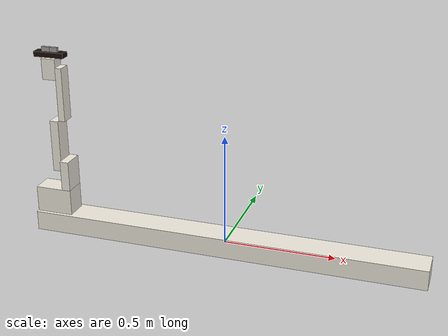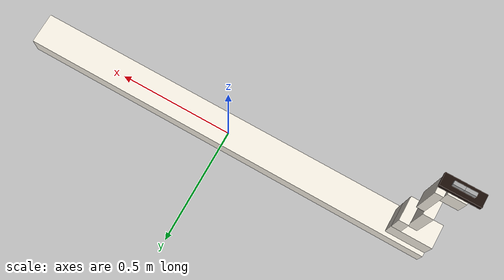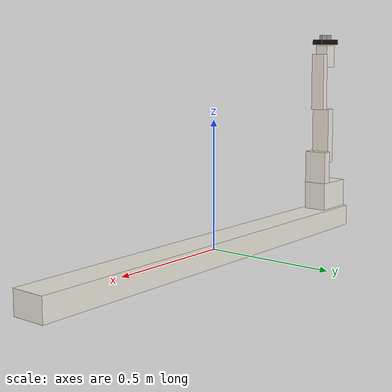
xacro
<?xml version="1.0"?>
<robot xmlns:xacro="http://www.ros.org/wiki/xacro" name="ttk4900_orca">
    <xacro:arg name="initial_positions_file" default="initial_positions.yaml" />

    <!-- Import ttk4900_orca urdf file -->
    <xacro:include filename="/home/ov_robotarm/TTK4900_Masteroppgave/code/ros/src/urdf/orca_description.urdf" />

    <!-- Import control_xacro -->
    <xacro:include filename="ttk4900_orca.ros2_control.xacro" />

    <xacro:ttk4900_orca_ros2_control name="FakeSystem" initial_positions_file="$(arg initial_positions_file)"/>

</robot>

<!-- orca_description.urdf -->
<robot name="ttk4900_orca">

  <material name="offwhite">
    <color rgba="0.94 0.92 0.87 1.0"/>
  </material>

  <link name="base_link">
    <inertial>
      <origin xyz="0.0 0.0 0.0" rpy="0.0 0.0 0.0"/>
      <mass value="15"/>
      <inertia ixx="0.1" ixy="0.0" ixz="0.0" iyy="0.1" iyz="0.0" izz="0.1"/>
    </inertial>
    <visual name="base_visual">
      <origin xyz="0.0 0.0 0.0" rpy="0.0 0.0 0.0"/>
      <geometry>
        <box size="1.8 0.135 0.09"/>
      </geometry>
      <material name="offwhite"/>
    </visual>
    <collision>
      <origin xyz="0.0 0.0 0.0" rpy="0.0 0.0 0.0"/>
      <geometry>
        <box size="1.8 0.135 0.09"/>
      </geometry>
    </collision>
  </link>

  <link name="torso_link0">
    <inertial>
      <origin xyz="0.0 0.0 0.0" rpy="0.0 0.0 0.0"/>
      <mass value="8.0"/>
      <inertia ixx="0.1" ixy="0.0" ixz="0.0" iyy="0.1" iyz="0.0" izz="0.1"/>
    </inertial>
    <visual name="torso_visual0">
      <origin xyz="0.085 0.0 0.06" rpy="0.0 0.0 0.0"/>
      <geometry>
        <box size="0.17 0.1 0.12"/>
      </geometry>
      <material name="offwhite"/>
    </visual>
    <collision>
      <origin xyz="0.085 0.0 0.06" rpy="0.0 0.0 0.0"/>
      <geometry>
        <box size="0.17 0.1 0.12"/>
      </geometry>
    </collision>
  </link>

  <link name="torso_link1">
    <inertial>
      <origin xyz="0.0 0.0 0.0" rpy="0.0 0.0 0.0"/>
      <mass value="0.2"/>
      <inertia ixx="0.1" ixy="0.0" ixz="0.0" iyy="0.1" iyz="0.0" izz="0.1"/>
    </inertial>
    <visual name="torso_visual1">
      <origin xyz="0.04 0.0 0.07" rpy="0.0 0.0 0.0"/>
      <geometry>
        <box size="0.04 0.1 0.14"/>
      </geometry>
      <material name="offwhite"/>
    </visual>
    <collision>
      <origin xyz="0.04 0.0 0.07" rpy="0.0 0.0 0.0"/>
      <geometry>
        <box size="0.04 0.1 0.14"/>
      </geometry>
    </collision>
  </link>

  <joint name="joint_base_torso" type="prismatic">
    <origin xyz="-0.9 0.0 0.045" rpy="0.0 0.0 0.0"/>
    <parent link="base_link"/>
    <child link="torso_link0"/>
    <axis xyz="-1 0.0 0.0"/>
    <limit lower="-1.65" upper="0" effort="70" velocity="0.1"/>
  </joint>

  <joint name="joint_t0t1" type="fixed">
    <origin xyz="0.11 0.0 0.12" rpy="0.0 0.0 0.0"/>
    <parent link="torso_link0"/>
    <child link="torso_link1"/>
    <axis xyz="0.0 0.0 0.0"/>
    <limit lower="0.0" upper="0.0" effort="0.0" velocity="0.0"/>
  </joint>

  <link name="link_upper_arm">
    <inertial>
      <origin xyz="0.0 0.0 0.0" rpy="0.0 0.0 0.0"/>
      <mass value="2.5"/>
      <inertia ixx="0.1" ixy="0.0" ixz="0.0" iyy="0.1" iyz="0.0" izz="0.1"/>
    </inertial>
    <visual name="upper_arm_visual">
      <origin xyz="0.0 0.0 0.12" rpy="0.0 0.0 0.0"/>
      <geometry>
        <box size="0.04 0.08 0.24"/>
      </geometry>
      <material name="offwhite"/>
    </visual>
    <collision>
      <origin xyz="-0.0 0.0 0.12" rpy="0.0 0.0 0.0"/>
      <geometry>
        <box size="0.04 0.08 0.24"/>
      </geometry>
    </collision>
  </link>

  <joint name="joint_torso_upper_arm" type="revolute">
    <origin xyz="0.0 0.0 0.09" rpy="0.0 0.0 0.0"/>
    <parent link="torso_link1"/>
    <child link="link_upper_arm"/>
    <axis xyz="-1 0.0 0.0"/>
    <limit lower="-1.2" upper="1.2" effort="70" velocity="0.17"/>
  </joint>

  <link name="link_lower_arm">
    <inertial>
      <origin xyz="0.0 0.0 0.0" rpy="0.0 0.0 0.0"/>
      <mass value="1.5"/>
      <inertia ixx="0.1" ixy="0.0" ixz="0.0" iyy="0.1" iyz="0.0" izz="0.1"/>
    </inertial>
    <visual name="upper_arm_visual">
      <origin xyz="0.0 0.0 0.1225" rpy="0.0 0.0 0.0"/>
      <geometry>
        <box size="0.03 0.06 0.245"/>
      </geometry>
      <material name="offwhite"/>
    </visual>
    <collision>
      <origin xyz="0.0 0.0 0.1225" rpy="0.0 0.0 0.0"/>
      <geometry>
        <box size="0.03 0.06 0.245"/>
      </geometry>
    </collision>
  </link>

  <joint name="joint_upper_lower_arm" type="revolute">
    <origin xyz="0.035 0.0 0.24" rpy="0.0 0.0 0.0"/>
    <parent link="link_upper_arm"/>
    <child link="link_lower_arm"/>
    <axis xyz="1 0.0 0.0"/>
    <limit lower="-2.5" upper="2.5" effort="70" velocity="0.17"/>
  </joint>

  <link name="link_hand">
    <inertial>
      <origin xyz="0.0 0.0 0.0" rpy="0.0 0.0 0.0"/>
      <mass value="0.5"/>
      <inertia ixx="0.1" ixy="0.0" ixz="0.0" iyy="0.1" iyz="0.0" izz="0.1"/>
    </inertial>
    <visual name="hand_visual">
      <origin xyz="-0.0325 0 -0.01" rpy="0.0 0.0 0.0"/>
      <geometry>
        <box size="0.065 0.055 0.095"/>
      </geometry>
      <material name="offwhite"/>
    </visual>
    <collision>
      <origin xyz="-0.0325 0 -0.01" rpy="0.0 0.0 0.0"/>
      <geometry>
        <box size="0.065 0.055 0.095"/>
      </geometry>
    </collision>
  </link>

  <joint name="joint_lower_arm_hand" type="revolute">
    <origin xyz="-0.015 0.0 0.245" rpy="0.0 0.0 0.0"/>
    <parent link="link_lower_arm"/>
    <child link="link_hand"/>
    <axis xyz="-1 0.0 0.0"/>
    <limit lower="-8" upper="2.5" effort="70" velocity="0.17"/>
  </joint>

  <link name="link_twist">
    <inertial>
      <origin xyz="0.0 0.0 0.0" rpy="0.0 0.0 0.0"/>
      <mass value="0.2"/>
      <inertia ixx="0.1" ixy="0.0" ixz="0.0" iyy="0.1" iyz="0.0" izz="0.1"/>
    </inertial>
    <visual name="twist_visual">
      <origin xyz="0 0 0.0115" rpy="0.0 0.0 0.0"/>
      <geometry>
        <box size="0.14 0.045 0.023"/>
      </geometry>
      <material name="brown">
        <color rgba="0.1 0.05 0.03 1.0"/>
      </material>
    </visual>
    <collision>
      <origin xyz="0 0 0.0115" rpy="0.0 0.0 0.0"/>
      <geometry>
        <box size="0.14 0.045 0.023"/>
      </geometry>
    </collision>
  </link>

  <joint name="joint_hand_twist" type="continuous">
    <origin xyz="-0.0325 0.0 0.042" rpy="0.0 0.0 0.0"/>
    <parent link="link_hand"/>
    <child link="link_twist"/>
    <axis xyz="0.0 0.0 1"/>
    <limit lower="0.0" upper="0.0" effort="0.0" velocity="0.1"/>
  </joint>

  <link name="link_gripper0">
    <inertial>
      <origin xyz="0.0 0.0 0.0" rpy="0.0 0.0 0.0"/>
      <mass value="0.03"/>
      <inertia ixx="0.005" ixy="0.0" ixz="0.0" iyy="0.05" iyz="0.0" izz="0.05"/>
    </inertial>
    <visual name="gripper0_visual">
      <origin xyz="-0.019 0.0 0.01" rpy="0.0 0.0 0.0"/>
      <geometry>
        <box size="0.038 0.013 0.02"/>
      </geometry>
      <material name="light_gray">
        <color rgba="0.63 0.63 0.63 1.0"/>
      </material>
    </visual>
    <collision>
      <origin xyz="-0.019 0.0 0.01" rpy="0.0 0.0 0.0"/>
      <geometry>
        <box size="0.038 0.013 0.02"/>
      </geometry>
    </collision>
  </link>

  <joint name="joint_twist_gripper0" type="prismatic">
    <origin xyz="0.0 0.0 0.023" rpy="0.0 0.0 0.0"/>
    <parent link="link_twist"/>
    <child link="link_gripper0"/>
    <axis xyz="-1 0.0 0.0"/>
    <limit lower="0.0" upper="0.04" effort="0.7" velocity="0.01"/>
  </joint>

  <link name="link_gripper1">
    <inertial>
      <origin xyz="0.0 0.0 0.0" rpy="0.0 0.0 0.0"/>
      <mass value="0.03"/>
      <inertia ixx="0.005" ixy="0.0" ixz="0.0" iyy="0.05" iyz="0.0" izz="0.05"/>
    </inertial>
    <visual name="gripper1_visual">
      <origin xyz="0.019 0.0 0.01" rpy="0.0 0.0 0.0"/>
      <geometry>
        <box size="0.038 0.013 0.02"/>
      </geometry>
      <material name="light_gray">
        <color rgba="0.63 0.63 0.63 1.0"/>
      </material>
    </visual>
    <collision>
      <origin xyz="0.019 0.0 0.01" rpy="0.0 0.0 0.0"/>
      <geometry>
        <box size="0.038 0.013 0.02"/>
      </geometry>
    </collision>
  </link>

  <joint name="joint_twist_gripper1" type="prismatic">
    <origin xyz="0.0 0.0 0.023" rpy="0.0 0.0 0.0"/>
    <parent link="link_twist"/>
    <child link="link_gripper1"/>
    <axis xyz="1 0.0 0.0"/>
    <limit lower="0.0" upper="0.04" effort="0.7" velocity="0.01"/>
  </joint>

</robot>
